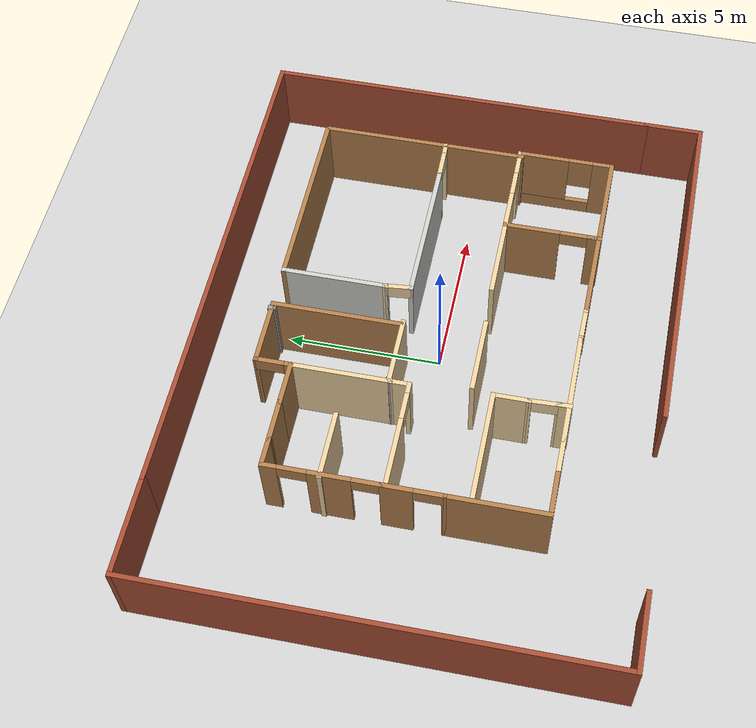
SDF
<sdf version="1.7">
 <world name="default">
  <light name="sun" type="directional">
   <pose>0 0 10 0 -0 0</pose>
   <diffuse>0.8 0.8 0.8 1</diffuse>
   <specular>0.2 0.2 0.2 1</specular>
   <attenuation>
    <range>1000</range>
    <constant>0.9</constant>
    <linear>0.01</linear>
    <quadratic>0.001</quadratic>
   </attenuation>
   <direction>-0.5 0.1 -0.9</direction>
   <spot><inner_angle>0</inner_angle><outer_angle>0</outer_angle><falloff>0</falloff></spot>
  </light>
  <model name="ground_plane">
   <static>1</static>
   <link name="link">
    <collision name="collision">
     <geometry><plane><normal>0 0 1</normal><size>100 100</size></plane></geometry>
     <surface><friction><ode><mu>100</mu><mu2>50</mu2></ode></friction></surface>
    </collision>
    <visual name="visual">
     <cast_shadows>0</cast_shadows>
     <geometry><plane><normal>0 0 1</normal><size>100 100</size></plane></geometry>
     <material>
      <script><uri>file://media/materials/scripts/gazebo.material</uri><name>Gazebo/Grey</name></script>
     </material>
    </visual>
   </link>
  </model>
  <gravity>0 0 -9.8</gravity>
  <magnetic_field>6e-06 2.3e-05 -4.2e-05</magnetic_field>
  <atmosphere type="adiabatic"/>
  <physics type="ode">
   <max_step_size>0.001</max_step_size>
   <real_time_factor>1</real_time_factor>
   <real_time_update_rate>1000</real_time_update_rate>
  </physics>
  <scene><ambient>0.4 0.4 0.4 1</ambient><background>0.7 0.7 0.7 1</background><shadows>1</shadows></scene>
  <audio><device>default</device></audio>
  <spherical_coordinates>
   <surface_model>EARTH_WGS84</surface_model>
   <latitude_deg>0</latitude_deg>
   <longitude_deg>0</longitude_deg>
   <elevation>0</elevation>
   <heading_deg>0</heading_deg>
  </spherical_coordinates>
  <model name="amr_terrain">
   <pose>-0.394362 0.029326 0 0 -0 0</pose>
   <link name="Wall_1">
    <collision name="Wall_1_Collision">
     <geometry><box><size>0.25 0.15 2.5</size></box></geometry>
     <pose>0 0 1.25 0 -0 0</pose>
    </collision>
    <visual name="Wall_1_Visual">
     <pose>0 0 1.25 0 -0 0</pose>
     <geometry><box><size>0.25 0.15 2.5</size></box></geometry>
     <material>
      <script><uri>file://media/materials/scripts/gazebo.material</uri><name>Gazebo/Grey</name></script>
      <ambient>0 0 0 1</ambient>
     </material>
     <meta><layer>0</layer></meta>
    </visual>
    <pose>-0.102526 5.24389 0 0 -0 -1.5708</pose>
   </link>
   <link name="Wall_14">
    <collision name="Wall_14_Collision">
     <geometry><box><size>3.4468 0.15 2.5</size></box></geometry>
     <pose>0 0 1.25 0 -0 0</pose>
    </collision>
    <visual name="Wall_14_Visual">
     <pose>0 0 1.25 0 -0 0</pose>
     <geometry><box><size>3.4468 0.15 2.5</size></box></geometry>
     <material>
      <script><uri>file://media/materials/scripts/gazebo.material</uri><name>Gazebo/CeilingTiled</name></script>
      <ambient>0.921569 0.807843 0.615686 1</ambient>
     </material>
     <meta><layer>0</layer></meta>
    </visual>
    <pose>1.3991 3.59229 0 0 -0 -1.5708</pose>
   </link>
   <link name="Wall_16">
    <collision name="Wall_16_Collision">
     <geometry><box><size>5 0.15 2.5</size></box></geometry>
     <pose>0 0 1.25 0 -0 0</pose>
    </collision>
    <visual name="Wall_16_Visual">
     <pose>0 0 1.25 0 -0 0</pose>
     <geometry><box><size>5 0.15 2.5</size></box></geometry>
     <material>
      <script><uri>file://media/materials/scripts/gazebo.material</uri><name>Gazebo/CeilingTiled</name></script>
      <ambient>0.921569 0.807843 0.615686 1</ambient>
     </material>
     <meta><layer>0</layer></meta>
    </visual>
    <pose>3.9039 1.11766 0 0 -0 0</pose>
   </link>
   <link name="Wall_18">
    <collision name="Wall_18_Collision">
     <geometry><box><size>3.25 0.15 2.5</size></box></geometry>
     <pose>0 0 1.25 0 -0 0</pose>
    </collision>
    <visual name="Wall_18_Visual">
     <pose>0 0 1.25 0 -0 0</pose>
     <geometry><box><size>3.25 0.15 2.5</size></box></geometry>
     <material>
      <script><uri>file://media/materials/scripts/gazebo.material</uri><name>Gazebo/Wood</name></script>
      <ambient>1 1 1 1</ambient>
     </material>
     <meta><layer>0</layer></meta>
    </visual>
    <pose>-5.54355 -2.85296 0 0 -0 -1.5708</pose>
   </link>
   <link name="Wall_19">
    <collision name="Wall_19_Collision">
     <geometry><box><size>1.5 0.15 2.5</size></box></geometry>
     <pose>0 0 1.25 0 -0 0</pose>
    </collision>
    <visual name="Wall_19_Visual">
     <pose>0 0 1.25 0 -0 0</pose>
     <geometry><box><size>1.5 0.15 2.5</size></box></geometry>
     <material>
      <script><uri>file://media/materials/scripts/gazebo.material</uri><name>Gazebo/Wood</name></script>
      <ambient>1 1 1 1</ambient>
     </material>
     <meta><layer>0</layer></meta>
    </visual>
    <pose>-4.86855 -4.40296 0 0 -0 0</pose>
   </link>
   <link name="Wall_21">
    <collision name="Wall_21_Collision">
     <geometry><box><size>3.75 0.15 2.5</size></box></geometry>
     <pose>0 0 1.25 0 -0 0</pose>
    </collision>
    <visual name="Wall_21_Visual">
     <pose>0 0 1.25 0 -0 0</pose>
     <geometry><box><size>3.75 0.15 2.5</size></box></geometry>
     <material>
      <script><uri>file://media/materials/scripts/gazebo.material</uri><name>Gazebo/Grey</name></script>
      <ambient>0.921569 0.807843 0.615686 1</ambient>
     </material>
     <meta><layer>0</layer></meta>
    </visual>
    <pose>-1.24313 -4.41519 0 0 -0 0</pose>
   </link>
   <link name="Wall_23">
    <collision name="Wall_23_Collision">
     <geometry><box><size>0.5 0.15 2.5</size></box></geometry>
     <pose>0 0 1.25 0 -0 0</pose>
    </collision>
    <visual name="Wall_23_Visual">
     <pose>0 0 1.25 0 -0 0</pose>
     <geometry><box><size>0.5 0.15 2.5</size></box></geometry>
     <material>
      <script><uri>file://media/materials/scripts/gazebo.material</uri><name>Gazebo/Grey</name></script>
      <ambient>0.921569 0.807843 0.615686 1</ambient>
     </material>
     <meta><layer>0</layer></meta>
    </visual>
    <pose>-1.87273 -4.26678 0 0 -0 1.5708</pose>
   </link>
   <link name="Wall_25">
    <collision name="Wall_25_Collision">
     <geometry><box><size>3.75 0.15 2.5</size></box></geometry>
     <pose>0 0 1.25 0 -0 0</pose>
    </collision>
    <visual name="Wall_25_Visual">
     <pose>0 0 1.25 0 -0 0</pose>
     <geometry><box><size>3.75 0.15 2.5</size></box></geometry>
     <material>
      <script><uri>file://media/materials/scripts/gazebo.material</uri><name>Gazebo/Grey</name></script>
      <ambient>0.921569 0.807843 0.615686 1</ambient>
     </material>
     <meta><layer>0</layer></meta>
    </visual>
    <pose>-3.71695 -2.10097 0 0 -0 0</pose>
   </link>
   <link name="Wall_30">
    <collision name="Wall_30_Collision">
     <geometry><box><size>1.25 0.15 2.5</size></box></geometry>
     <pose>0 0 1.25 0 -0 0</pose>
    </collision>
    <visual name="Wall_30_Visual">
     <pose>0 0 1.25 0 -0 0</pose>
     <geometry><box><size>1.25 0.15 2.5</size></box></geometry>
     <material>
      <script><uri>file://media/materials/scripts/gazebo.material</uri><name>Gazebo/Grey</name></script>
      <ambient>0.921569 0.807843 0.615686 1</ambient>
     </material>
     <meta><layer>0</layer></meta>
    </visual>
    <pose>-1.91695 -2.65097 0 0 -0 -1.5708</pose>
   </link>
   <link name="Wall_32">
    <collision name="Wall_32_Collision">
     <geometry><box><size>6.02684 0.15 2.5</size></box></geometry>
     <pose>0 0 1.25 0 -0 0</pose>
    </collision>
    <visual name="Wall_32_Visual">
     <pose>0 0 1.25 0 -0 0</pose>
     <geometry><box><size>6.02684 0.15 2.5</size></box></geometry>
     <material>
      <script><uri>file://media/materials/scripts/gazebo.material</uri><name>Gazebo/Wood</name></script>
      <ambient>1 1 1 1</ambient>
     </material>
     <meta><layer>0</layer></meta>
    </visual>
    <pose>4.7098 -4.46838 0 0 -0 -0.009053</pose>
   </link>
   <link name="Wall_36">
    <collision name="Wall_36_Collision">
     <geometry><box><size>6.25 0.15 2.5</size></box></geometry>
     <pose>0 0 1.25 0 -0 0</pose>
    </collision>
    <visual name="Wall_36_Visual">
     <pose>0 0 1.25 0 -0 0</pose>
     <geometry><box><size>6.25 0.15 2.5</size></box></geometry>
     <material>
      <script><uri>file://media/materials/scripts/gazebo.material</uri><name>Gazebo/Wood</name></script>
      <ambient>1 1 1 1</ambient>
     </material>
     <meta><layer>0</layer></meta>
    </visual>
    <pose>4.4491 5.24069 0 0 -0 0</pose>
   </link>
   <link name="Wall_37">
    <collision name="Wall_37_Collision">
     <geometry><box><size>4.25 0.15 2.5</size></box></geometry>
     <pose>0 0 1.25 0 -0 0</pose>
    </collision>
    <visual name="Wall_37_Visual">
     <pose>0 0 1.25 0 -0 0</pose>
     <geometry><box><size>4.25 0.15 2.5</size></box></geometry>
     <material>
      <script><uri>file://media/materials/scripts/gazebo.material</uri><name>Gazebo/Wood</name></script>
      <ambient>0.921569 0.807843 0.615686 1</ambient>
     </material>
     <meta><layer>0</layer></meta>
    </visual>
    <pose>7.4991 3.19069 0 0 -0 -1.5708</pose>
   </link>
   <link name="Wall_38">
    <pose>6.914 1.12917 0 0 -0 -3.12191</pose>
    <visual name="Wall_38_Visual_0">
     <pose>-0.457843 0 1.25 0 -0 0</pose>
     <geometry><box><size>0.404739 0.15 2.5</size></box></geometry>
     <material>
      <script><uri>file://media/materials/scripts/gazebo.material</uri><name>Gazebo/Grey</name></script>
      <ambient>0.921569 0.807843 0.615686 1</ambient>
     </material>
     <meta><layer>0</layer></meta>
    </visual>
    <collision name="Wall_38_Collision_0">
     <geometry><box><size>0.404739 0.15 2.5</size></box></geometry>
     <pose>-0.457843 0 1.25 0 -0 0</pose>
    </collision>
    <visual name="Wall_38_Visual_1">
     <pose>0.65237 0 1.25 0 -0 0</pose>
     <geometry><box><size>0.015687 0.15 2.5</size></box></geometry>
     <material>
      <script><uri>file://media/materials/scripts/gazebo.material</uri><name>Gazebo/Grey</name></script>
      <ambient>0.921569 0.807843 0.615686 1</ambient>
     </material>
     <meta><layer>0</layer></meta>
    </visual>
    <collision name="Wall_38_Collision_1">
     <geometry><box><size>0.015687 0.15 2.5</size></box></geometry>
     <pose>0.65237 0 1.25 0 -0 0</pose>
    </collision>
    <visual name="Wall_38_Visual_2">
     <pose>0.194526 0 2.25 0 -0 0</pose>
     <geometry><box><size>0.9 0.15 0.5</size></box></geometry>
     <material>
      <script><uri>file://media/materials/scripts/gazebo.material</uri><name>Gazebo/Grey</name></script>
      <ambient>0.921569 0.807843 0.615686 1</ambient>
     </material>
     <meta><layer>0</layer></meta>
    </visual>
    <collision name="Wall_38_Collision_2">
     <geometry><box><size>0.9 0.15 0.5</size></box></geometry>
     <pose>0.194526 0 2.25 0 -0 0</pose>
    </collision>
   </link>
   <link name="Wall_40">
    <pose>7.6481 -2.94498 0 0 -0 1.5708</pose>
    <visual name="Wall_40_Visual_0">
     <pose>-1.2688 0 1.25 0 -0 0</pose>
     <geometry><box><size>0.712408 0.15 2.5</size></box></geometry>
     <material>
      <script><uri>file://media/materials/scripts/gazebo.material</uri><name>Gazebo/Wood</name></script>
      <ambient>1 1 1 1</ambient>
     </material>
     <meta><layer>0</layer></meta>
    </visual>
    <collision name="Wall_40_Collision_0">
     <geometry><box><size>0.712408 0.15 2.5</size></box></geometry>
     <pose>-1.2688 0 1.25 0 -0 0</pose>
    </collision>
    <visual name="Wall_40_Visual_1">
     <pose>0.356204 0 0.25 0 -0 0</pose>
     <geometry><box><size>2.53759 0.15 0.5</size></box></geometry>
     <material>
      <script><uri>file://media/materials/scripts/gazebo.material</uri><name>Gazebo/Wood</name></script>
      <ambient>1 1 1 1</ambient>
     </material>
     <meta><layer>0</layer></meta>
    </visual>
    <collision name="Wall_40_Collision_1">
     <geometry><box><size>2.53759 0.15 0.5</size></box></geometry>
     <pose>0.356204 0 0.25 0 -0 0</pose>
    </collision>
    <visual name="Wall_40_Visual_2">
     <pose>0.756204 0 1.5 0 -0 0</pose>
     <geometry><box><size>1.73759 0.15 2</size></box></geometry>
     <material>
      <script><uri>file://media/materials/scripts/gazebo.material</uri><name>Gazebo/Wood</name></script>
      <ambient>1 1 1 1</ambient>
     </material>
     <meta><layer>0</layer></meta>
    </visual>
    <collision name="Wall_40_Collision_2">
     <geometry><box><size>1.73759 0.15 2</size></box></geometry>
     <pose>0.756204 0 1.5 0 -0 0</pose>
    </collision>
    <visual name="Wall_40_Visual_3">
     <pose>-0.512592 0 1.9 0 -0 0</pose>
     <geometry><box><size>0.8 0.15 1.2</size></box></geometry>
     <material>
      <script><uri>file://media/materials/scripts/gazebo.material</uri><name>Gazebo/Wood</name></script>
      <ambient>1 1 1 1</ambient>
     </material>
     <meta><layer>0</layer></meta>
    </visual>
    <collision name="Wall_40_Collision_3">
     <geometry><box><size>0.8 0.15 1.2</size></box></geometry>
     <pose>-0.512592 0 1.9 0 -0 0</pose>
    </collision>
   </link>
   <link name="Wall_41">
    <pose>6.0981 -1.39498 0 0 -0 3.14159</pose>
    <visual name="Wall_41_Visual_0">
     <pose>-1.14852 0 1.25 0 -0 0</pose>
     <geometry><box><size>0.952966 0.15 2.5</size></box></geometry>
     <material>
      <script><uri>file://media/materials/scripts/gazebo.material</uri><name>Gazebo/Grey</name></script>
      <ambient>0.921569 0.807843 0.615686 1</ambient>
     </material>
     <meta><layer>0</layer></meta>
    </visual>
    <collision name="Wall_41_Collision_0">
     <geometry><box><size>0.952966 0.15 2.5</size></box></geometry>
     <pose>-1.14852 0 1.25 0 -0 0</pose>
    </collision>
    <visual name="Wall_41_Visual_1">
     <pose>0.926483 0 1.25 0 -0 0</pose>
     <geometry><box><size>1.39703 0.15 2.5</size></box></geometry>
     <material>
      <script><uri>file://media/materials/scripts/gazebo.material</uri><name>Gazebo/Grey</name></script>
      <ambient>0.921569 0.807843 0.615686 1</ambient>
     </material>
     <meta><layer>0</layer></meta>
    </visual>
    <collision name="Wall_41_Collision_1">
     <geometry><box><size>1.39703 0.15 2.5</size></box></geometry>
     <pose>0.926483 0 1.25 0 -0 0</pose>
    </collision>
    <visual name="Wall_41_Visual_2">
     <pose>-0.222034 0 2.25 0 -0 0</pose>
     <geometry><box><size>0.9 0.15 0.5</size></box></geometry>
     <material>
      <script><uri>file://media/materials/scripts/gazebo.material</uri><name>Gazebo/Grey</name></script>
      <ambient>0.921569 0.807843 0.615686 1</ambient>
     </material>
     <meta><layer>0</layer></meta>
    </visual>
    <collision name="Wall_41_Collision_2">
     <geometry><box><size>0.9 0.15 0.5</size></box></geometry>
     <pose>-0.222034 0 2.25 0 -0 0</pose>
    </collision>
   </link>
   <link name="Wall_43">
    <collision name="Wall_43_Collision">
     <geometry><box><size>0.15 0.15 2.5</size></box></geometry>
     <pose>0 0 1.25 0 -0 0</pose>
    </collision>
    <visual name="Wall_43_Visual">
     <pose>0 0 1.25 0 -0 0</pose>
     <geometry><box><size>0.15 0.15 2.5</size></box></geometry>
     <material>
      <script><uri>file://media/materials/scripts/gazebo.material</uri><name>Gazebo/Grey</name></script>
      <ambient>1 1 1 1</ambient>
     </material>
     <meta><layer>0</layer></meta>
    </visual>
    <pose>4.5481 -4.24499 0 0 -0 0</pose>
   </link>
   <link name="Wall_45">
    <pose>4.5481 -2.94498 0 0 -0 -1.5708</pose>
    <visual name="Wall_45_Visual_0">
     <pose>-0.688103 0 1.25 0 -0 0</pose>
     <geometry><box><size>1.87379 0.15 2.5</size></box></geometry>
     <material>
      <script><uri>file://media/materials/scripts/gazebo.material</uri><name>Gazebo/Wood</name></script>
      <ambient>0.921569 0.807843 0.615686 1</ambient>
     </material>
     <meta><layer>0</layer></meta>
    </visual>
    <collision name="Wall_45_Collision_0">
     <geometry><box><size>1.87379 0.15 2.5</size></box></geometry>
     <pose>-0.688103 0 1.25 0 -0 0</pose>
    </collision>
    <visual name="Wall_45_Visual_1">
     <pose>1.3869 0 1.25 0 -0 0</pose>
     <geometry><box><size>0.476206 0.15 2.5</size></box></geometry>
     <material>
      <script><uri>file://media/materials/scripts/gazebo.material</uri><name>Gazebo/Wood</name></script>
      <ambient>0.921569 0.807843 0.615686 1</ambient>
     </material>
     <meta><layer>0</layer></meta>
    </visual>
    <collision name="Wall_45_Collision_1">
     <geometry><box><size>0.476206 0.15 2.5</size></box></geometry>
     <pose>1.3869 0 1.25 0 -0 0</pose>
    </collision>
    <visual name="Wall_45_Visual_2">
     <pose>0.698794 0 2.25 0 -0 0</pose>
     <geometry><box><size>0.9 0.15 0.5</size></box></geometry>
     <material>
      <script><uri>file://media/materials/scripts/gazebo.material</uri><name>Gazebo/Wood</name></script>
      <ambient>0.921569 0.807843 0.615686 1</ambient>
     </material>
     <meta><layer>0</layer></meta>
    </visual>
    <collision name="Wall_45_Collision_2">
     <geometry><box><size>0.9 0.15 0.5</size></box></geometry>
     <pose>0.698794 0 2.25 0 -0 0</pose>
    </collision>
   </link>
   <link name="Wall_47">
    <collision name="Wall_47_Collision">
     <geometry><box><size>2.75 0.15 2.5</size></box></geometry>
     <pose>0 0 1.25 0 -0 0</pose>
    </collision>
    <visual name="Wall_47_Visual">
     <pose>0 0 1.25 0 -0 0</pose>
     <geometry><box><size>2.75 0.15 2.5</size></box></geometry>
     <material>
      <script><uri>file://media/materials/scripts/gazebo.material</uri><name>Gazebo/Grey</name></script>
      <ambient>0.921569 0.807843 0.615686 1</ambient>
     </material>
     <meta><layer>0</layer></meta>
    </visual>
    <pose>3.2481 -1.39498 0 0 -0 3.14159</pose>
   </link>
   <link name="Wall_49">
    <collision name="Wall_49_Collision">
     <geometry><box><size>2.5 0.15 2.5</size></box></geometry>
     <pose>0 0 1.25 0 -0 0</pose>
    </collision>
    <visual name="Wall_49_Visual">
     <pose>0 0 1.25 0 -0 0</pose>
     <geometry><box><size>2.5 0.15 2.5</size></box></geometry>
     <material>
      <script><uri>file://media/materials/scripts/gazebo.material</uri><name>Gazebo/Grey</name></script>
      <ambient>0.921569 0.807843 0.615686 1</ambient>
     </material>
     <meta><layer>0</layer></meta>
    </visual>
    <pose>-0.573907 -1.43596 0 0 -0 3.14159</pose>
   </link>
   <link name="Wall_51">
    <pose>-5.54355 -0.377962 0 0 -0 1.5708</pose>
    <visual name="Wall_51_Visual_0">
     <pose>-0.948098 0 1.25 0 -0 0</pose>
     <geometry><box><size>0.103804 0.15 2.5</size></box></geometry>
     <material>
      <script><uri>file://media/materials/scripts/gazebo.material</uri><name>Gazebo/Wood</name></script>
      <ambient>1 1 1 1</ambient>
     </material>
     <meta><layer>0</layer></meta>
    </visual>
    <collision name="Wall_51_Collision_0">
     <geometry><box><size>0.103804 0.15 2.5</size></box></geometry>
     <pose>-0.948098 0 1.25 0 -0 0</pose>
    </collision>
    <visual name="Wall_51_Visual_1">
     <pose>0.501902 0 1.25 0 -0 0</pose>
     <geometry><box><size>0.996196 0.15 2.5</size></box></geometry>
     <material>
      <script><uri>file://media/materials/scripts/gazebo.material</uri><name>Gazebo/Wood</name></script>
      <ambient>1 1 1 1</ambient>
     </material>
     <meta><layer>0</layer></meta>
    </visual>
    <collision name="Wall_51_Collision_1">
     <geometry><box><size>0.996196 0.15 2.5</size></box></geometry>
     <pose>0.501902 0 1.25 0 -0 0</pose>
    </collision>
    <visual name="Wall_51_Visual_2">
     <pose>-0.446196 0 2.25 0 -0 0</pose>
     <geometry><box><size>0.9 0.15 0.5</size></box></geometry>
     <material>
      <script><uri>file://media/materials/scripts/gazebo.material</uri><name>Gazebo/Wood</name></script>
      <ambient>1 1 1 1</ambient>
     </material>
     <meta><layer>0</layer></meta>
    </visual>
    <collision name="Wall_51_Collision_2">
     <geometry><box><size>0.9 0.15 0.5</size></box></geometry>
     <pose>-0.446196 0 2.25 0 -0 0</pose>
    </collision>
   </link>
   <link name="Wall_52">
    <pose>-5.54355 2.34704 0 0 -0 1.5708</pose>
    <visual name="Wall_52_Visual_0">
     <pose>-1.83039 0 1.25 0 -0 0</pose>
     <geometry><box><size>0.089217 0.15 2.5</size></box></geometry>
     <material>
      <script><uri>file://media/materials/scripts/gazebo.material</uri><name>Gazebo/Wood</name></script>
      <ambient>1 1 1 1</ambient>
     </material>
     <meta><layer>0</layer></meta>
    </visual>
    <collision name="Wall_52_Collision_0">
     <geometry><box><size>0.089217 0.15 2.5</size></box></geometry>
     <pose>-1.83039 0 1.25 0 -0 0</pose>
    </collision>
    <visual name="Wall_52_Visual_1">
     <pose>-0.218574 0 1.25 0 -0 0</pose>
     <geometry><box><size>1.33442 0.15 2.5</size></box></geometry>
     <material>
      <script><uri>file://media/materials/scripts/gazebo.material</uri><name>Gazebo/Wood</name></script>
      <ambient>1 1 1 1</ambient>
     </material>
     <meta><layer>0</layer></meta>
    </visual>
    <collision name="Wall_52_Collision_1">
     <geometry><box><size>1.33442 0.15 2.5</size></box></geometry>
     <pose>-0.218574 0 1.25 0 -0 0</pose>
    </collision>
    <visual name="Wall_52_Visual_2">
     <pose>1.61182 0 1.25 0 -0 0</pose>
     <geometry><box><size>0.526366 0.15 2.5</size></box></geometry>
     <material>
      <script><uri>file://media/materials/scripts/gazebo.material</uri><name>Gazebo/Wood</name></script>
      <ambient>1 1 1 1</ambient>
     </material>
     <meta><layer>0</layer></meta>
    </visual>
    <collision name="Wall_52_Collision_2">
     <geometry><box><size>0.526366 0.15 2.5</size></box></geometry>
     <pose>1.61182 0 1.25 0 -0 0</pose>
    </collision>
    <visual name="Wall_52_Visual_3">
     <pose>-1.33578 0 2.25 0 -0 0</pose>
     <geometry><box><size>0.9 0.15 0.5</size></box></geometry>
     <material>
      <script><uri>file://media/materials/scripts/gazebo.material</uri><name>Gazebo/Wood</name></script>
      <ambient>1 1 1 1</ambient>
     </material>
     <meta><layer>0</layer></meta>
    </visual>
    <collision name="Wall_52_Collision_3">
     <geometry><box><size>0.9 0.15 0.5</size></box></geometry>
     <pose>-1.33578 0 2.25 0 -0 0</pose>
    </collision>
    <visual name="Wall_52_Visual_4">
     <pose>0.898634 0 2.25 0 -0 0</pose>
     <geometry><box><size>0.9 0.15 0.5</size></box></geometry>
     <material>
      <script><uri>file://media/materials/scripts/gazebo.material</uri><name>Gazebo/Wood</name></script>
      <ambient>1 1 1 1</ambient>
     </material>
     <meta><layer>0</layer></meta>
    </visual>
    <collision name="Wall_52_Collision_4">
     <geometry><box><size>0.9 0.15 0.5</size></box></geometry>
     <pose>0.898634 0 2.25 0 -0 0</pose>
    </collision>
   </link>
   <link name="Wall_53">
    <collision name="Wall_53_Collision">
     <geometry><box><size>1 0.15 2.5</size></box></geometry>
     <pose>0 0 1.25 0 -0 0</pose>
    </collision>
    <visual name="Wall_53_Visual">
     <pose>0 0 1.25 0 -0 0</pose>
     <geometry><box><size>1 0.15 2.5</size></box></geometry>
     <material>
      <script><uri>file://media/materials/scripts/gazebo.material</uri><name>Gazebo/Wood</name></script>
      <ambient>1 1 1 1</ambient>
     </material>
     <meta><layer>0</layer></meta>
    </visual>
    <pose>-5.11855 4.14704 0 0 -0 0</pose>
   </link>
   <link name="Wall_55">
    <collision name="Wall_55_Collision">
     <geometry><box><size>1.5 0.15 2.5</size></box></geometry>
     <pose>0 0 1.25 0 -0 0</pose>
    </collision>
    <visual name="Wall_55_Visual">
     <pose>0 0 1.25 0 -0 0</pose>
     <geometry><box><size>1.5 0.15 2.5</size></box></geometry>
     <material>
      <script><uri>file://media/materials/scripts/gazebo.material</uri><name>Gazebo/Wood</name></script>
      <ambient>1 1 1 1</ambient>
     </material>
     <meta><layer>0</layer></meta>
    </visual>
    <pose>-2.71394 4.15008 0 0 -0 0</pose>
   </link>
   <link name="Wall_56">
    <collision name="Wall_56_Collision">
     <geometry><box><size>3.25 0.15 2.5</size></box></geometry>
     <pose>0 0 1.25 0 -0 0</pose>
    </collision>
    <visual name="Wall_56_Visual">
     <pose>0 0 1.25 0 -0 0</pose>
     <geometry><box><size>3.25 0.15 2.5</size></box></geometry>
     <material>
      <script><uri>file://media/materials/scripts/gazebo.material</uri><name>Gazebo/Grey</name></script>
      <ambient>0.921569 0.807843 0.615686 1</ambient>
     </material>
     <meta><layer>0</layer></meta>
    </visual>
    <pose>-2.03894 2.60008 0 0 -0 -1.5708</pose>
   </link>
   <link name="Wall_57">
    <collision name="Wall_57_Collision">
     <geometry><box><size>0.75 0.15 2.5</size></box></geometry>
     <pose>0 0 1.25 0 -0 0</pose>
    </collision>
    <visual name="Wall_57_Visual">
     <pose>0 0 1.25 0 -0 0</pose>
     <geometry><box><size>0.75 0.15 2.5</size></box></geometry>
     <material>
      <script><uri>file://media/materials/scripts/gazebo.material</uri><name>Gazebo/Grey</name></script>
      <ambient>0.921569 0.807843 0.615686 1</ambient>
     </material>
     <meta><layer>0</layer></meta>
    </visual>
    <pose>-2.03894 0.750079 0 0 -0 -1.5708</pose>
   </link>
   <link name="Wall_58">
    <pose>-3.71394 0.450079 0 0 -0 3.14159</pose>
    <visual name="Wall_58_Visual_0">
     <pose>-1.5551 0 1.25 0 -0 0</pose>
     <geometry><box><size>0.389795 0.15 2.5</size></box></geometry>
     <material>
      <script><uri>file://media/materials/scripts/gazebo.material</uri><name>Gazebo/Grey</name></script>
      <ambient>0.921569 0.807843 0.615686 1</ambient>
     </material>
     <meta><layer>0</layer></meta>
    </visual>
    <collision name="Wall_58_Collision_0">
     <geometry><box><size>0.389795 0.15 2.5</size></box></geometry>
     <pose>-1.5551 0 1.25 0 -0 0</pose>
    </collision>
    <visual name="Wall_58_Visual_1">
     <pose>0.644898 0 1.25 0 -0 0</pose>
     <geometry><box><size>2.21021 0.15 2.5</size></box></geometry>
     <material>
      <script><uri>file://media/materials/scripts/gazebo.material</uri><name>Gazebo/Grey</name></script>
      <ambient>0.921569 0.807843 0.615686 1</ambient>
     </material>
     <meta><layer>0</layer></meta>
    </visual>
    <collision name="Wall_58_Collision_1">
     <geometry><box><size>2.21021 0.15 2.5</size></box></geometry>
     <pose>0.644898 0 1.25 0 -0 0</pose>
    </collision>
    <visual name="Wall_58_Visual_2">
     <pose>-0.910205 0 2.25 0 -0 0</pose>
     <geometry><box><size>0.9 0.15 0.5</size></box></geometry>
     <material>
      <script><uri>file://media/materials/scripts/gazebo.material</uri><name>Gazebo/Grey</name></script>
      <ambient>0.921569 0.807843 0.615686 1</ambient>
     </material>
     <meta><layer>0</layer></meta>
    </visual>
    <collision name="Wall_58_Collision_2">
     <geometry><box><size>0.9 0.15 0.5</size></box></geometry>
     <pose>-0.910205 0 2.25 0 -0 0</pose>
    </collision>
   </link>
   <link name="Wall_60">
    <pose>-2.03894 4.70008 0 0 -0 1.5708</pose>
    <visual name="Wall_60_Visual_0">
     <pose>-0.479997 0 1.25 0 -0 0</pose>
     <geometry><box><size>0.290005 0.15 2.5</size></box></geometry>
     <material>
      <script><uri>file://media/materials/scripts/gazebo.material</uri><name>Gazebo/Wood</name></script>
      <ambient>1 1 1 1</ambient>
     </material>
     <meta><layer>0</layer></meta>
    </visual>
    <collision name="Wall_60_Collision_0">
     <geometry><box><size>0.290005 0.15 2.5</size></box></geometry>
     <pose>-0.479997 0 1.25 0 -0 0</pose>
    </collision>
    <visual name="Wall_60_Visual_1">
     <pose>0.595003 0 1.25 0 -0 0</pose>
     <geometry><box><size>0.059995 0.15 2.5</size></box></geometry>
     <material>
      <script><uri>file://media/materials/scripts/gazebo.material</uri><name>Gazebo/Wood</name></script>
      <ambient>1 1 1 1</ambient>
     </material>
     <meta><layer>0</layer></meta>
    </visual>
    <collision name="Wall_60_Collision_1">
     <geometry><box><size>0.059995 0.15 2.5</size></box></geometry>
     <pose>0.595003 0 1.25 0 -0 0</pose>
    </collision>
    <visual name="Wall_60_Visual_2">
     <pose>0.115005 0 2.25 0 -0 0</pose>
     <geometry><box><size>0.9 0.15 0.5</size></box></geometry>
     <material>
      <script><uri>file://media/materials/scripts/gazebo.material</uri><name>Gazebo/Wood</name></script>
      <ambient>1 1 1 1</ambient>
     </material>
     <meta><layer>0</layer></meta>
    </visual>
    <collision name="Wall_60_Collision_2">
     <geometry><box><size>0.9 0.15 0.5</size></box></geometry>
     <pose>0.115005 0 2.25 0 -0 0</pose>
    </collision>
   </link>
   <link name="Wall_61">
    <collision name="Wall_61_Collision">
     <geometry><box><size>2.25 0.15 2.5</size></box></geometry>
     <pose>0 0 1.25 0 -0 0</pose>
    </collision>
    <visual name="Wall_61_Visual">
     <pose>0 0 1.25 0 -0 0</pose>
     <geometry><box><size>2.25 0.15 2.5</size></box></geometry>
     <material>
      <script><uri>file://media/materials/scripts/gazebo.material</uri><name>Gazebo/Wood</name></script>
      <ambient>1 1 1 1</ambient>
     </material>
     <meta><layer>0</layer></meta>
    </visual>
    <pose>-0.988937 5.25008 0 0 -0 0</pose>
   </link>
   <link name="Wall_62">
    <collision name="Wall_62_Collision">
     <geometry><box><size>4.25 0.15 2.5</size></box></geometry>
     <pose>0 0 1.25 0 -0 0</pose>
    </collision>
    <visual name="Wall_62_Visual">
     <pose>0 0 1.25 0 -0 0</pose>
     <geometry><box><size>4.25 0.15 2.5</size></box></geometry>
     <material>
      <script><uri>file://media/materials/scripts/gazebo.material</uri><name>Gazebo/Wood</name></script>
      <ambient>0.921569 0.807843 0.615686 1</ambient>
     </material>
     <meta><layer>0</layer></meta>
    </visual>
    <pose>0.061063 3.20008 0 0 -0 -1.5708</pose>
   </link>
   <link name="Wall_65">
    <collision name="Wall_65_Collision">
     <geometry><box><size>2.75 0.15 2.5</size></box></geometry>
     <pose>0 0 1.25 0 -0 0</pose>
    </collision>
    <visual name="Wall_65_Visual">
     <pose>0 0 1.25 0 -0 0</pose>
     <geometry><box><size>2.75 0.15 2.5</size></box></geometry>
     <material>
      <script><uri>file://media/materials/scripts/gazebo.material</uri><name>Gazebo/Wood</name></script>
      <ambient>1 1 1 1</ambient>
     </material>
     <meta><layer>0</layer></meta>
    </visual>
    <pose>7.4991 -0.159313 0 0 -0 -1.5708</pose>
   </link>
   <link name="Wall_67">
    <collision name="Wall_67_Collision">
     <geometry><box><size>0.254758 0.15 2.5</size></box></geometry>
     <pose>0 0 1.25 0 -0 0</pose>
    </collision>
    <visual name="Wall_67_Visual">
     <pose>0 0 1.25 0 -0 0</pose>
     <geometry><box><size>0.254758 0.15 2.5</size></box></geometry>
     <material>
      <script><uri>file://media/materials/scripts/gazebo.material</uri><name>Gazebo/Grey</name></script>
      <ambient>1 1 1 1</ambient>
     </material>
     <meta><layer>0</layer></meta>
    </visual>
    <pose>-1.99073 1.07057 0 0 -0 0.401893</pose>
   </link>
   <link name="Wall_68">
    <collision name="Wall_68_Collision">
     <geometry><box><size>2.25 0.15 2.5</size></box></geometry>
     <pose>0 0 1.25 0 -0 0</pose>
    </collision>
    <visual name="Wall_68_Visual">
     <pose>0 0 1.25 0 -0 0</pose>
     <geometry><box><size>2.25 0.15 2.5</size></box></geometry>
     <material>
      <script><uri>file://media/materials/scripts/gazebo.material</uri><name>Gazebo/Grey</name></script>
      <ambient>0.921569 0.807843 0.615686 1</ambient>
     </material>
     <meta><layer>0</layer></meta>
    </visual>
    <pose>-0.892526 1.09106 0 0 -0 0</pose>
   </link>
   <link name="Wall_70">
    <collision name="Wall_70_Collision">
     <geometry><box><size>2.25 0.15 2.5</size></box></geometry>
     <pose>0 0 1.25 0 -0 0</pose>
    </collision>
    <visual name="Wall_70_Visual">
     <pose>0 0 1.25 0 -0 0</pose>
     <geometry><box><size>2.25 0.15 2.5</size></box></geometry>
     <material>
      <script><uri>file://media/materials/scripts/gazebo.material</uri><name>Gazebo/Grey</name></script>
      <ambient>0.921569 0.807843 0.615686 1</ambient>
     </material>
     <meta><layer>0</layer></meta>
    </visual>
    <pose>-4.54675 2.39447 0 0 -0 0</pose>
   </link>
   <link name="Wall_72">
    <pose>1.439 1.53077 0 0 -0 -1.47451</pose>
    <visual name="Wall_72_Visual_0">
     <pose>-0.402557 0 1.25 0 -0 0</pose>
     <geometry><box><size>0.174963 0.15 2.5</size></box></geometry>
     <material>
      <script><uri>file://media/materials/scripts/gazebo.material</uri><name>Gazebo/Grey</name></script>
      <ambient>0.921569 0.807843 0.615686 1</ambient>
     </material>
     <meta><layer>0</layer></meta>
    </visual>
    <collision name="Wall_72_Collision_0">
     <geometry><box><size>0.174963 0.15 2.5</size></box></geometry>
     <pose>-0.402557 0 1.25 0 -0 0</pose>
    </collision>
    <visual name="Wall_72_Visual_1">
     <pose>0.087481 0 2.25 0 -0 0</pose>
     <geometry><box><size>0.805113 0.15 0.5</size></box></geometry>
     <material>
      <script><uri>file://media/materials/scripts/gazebo.material</uri><name>Gazebo/Grey</name></script>
      <ambient>0.921569 0.807843 0.615686 1</ambient>
     </material>
     <meta><layer>0</layer></meta>
    </visual>
    <collision name="Wall_72_Collision_1">
     <geometry><box><size>0.805113 0.15 0.5</size></box></geometry>
     <pose>0.087481 0 2.25 0 -0 0</pose>
    </collision>
   </link>
   <link name="Wall_74">
    <pose>1.16418 -4.42849 0 0 -0 -0.021896</pose>
    <visual name="Wall_74_Visual_0">
     <pose>-0.572874 0 1.25 0 -0 0</pose>
     <geometry><box><size>0.21918 0.15 2.5</size></box></geometry>
     <material>
      <script><uri>file://media/materials/scripts/gazebo.material</uri><name>Gazebo/Grey</name></script>
      <ambient>0.921569 0.807843 0.615686 1</ambient>
     </material>
     <meta><layer>0</layer></meta>
    </visual>
    <collision name="Wall_74_Collision_0">
     <geometry><box><size>0.21918 0.15 2.5</size></box></geometry>
     <pose>-0.572874 0 1.25 0 -0 0</pose>
    </collision>
    <visual name="Wall_74_Visual_1">
     <pose>0.55959 0 1.25 0 -0 0</pose>
     <geometry><box><size>0.245748 0.15 2.5</size></box></geometry>
     <material>
      <script><uri>file://media/materials/scripts/gazebo.material</uri><name>Gazebo/Grey</name></script>
      <ambient>0.921569 0.807843 0.615686 1</ambient>
     </material>
     <meta><layer>0</layer></meta>
    </visual>
    <collision name="Wall_74_Collision_1">
     <geometry><box><size>0.245748 0.15 2.5</size></box></geometry>
     <pose>0.55959 0 1.25 0 -0 0</pose>
    </collision>
    <visual name="Wall_74_Visual_2">
     <pose>-0.013284 0 2.25 0 -0 0</pose>
     <geometry><box><size>0.9 0.15 0.5</size></box></geometry>
     <material>
      <script><uri>file://media/materials/scripts/gazebo.material</uri><name>Gazebo/Grey</name></script>
      <ambient>0.921569 0.807843 0.615686 1</ambient>
     </material>
     <meta><layer>0</layer></meta>
    </visual>
    <collision name="Wall_74_Collision_2">
     <geometry><box><size>0.9 0.15 0.5</size></box></geometry>
     <pose>-0.013284 0 2.25 0 -0 0</pose>
    </collision>
   </link>
   <link name="Wall_76">
    <pose>-1.89484 -3.82138 0 0 -0 -1.53517</pose>
    <visual name="Wall_76_Visual_0">
     <pose>-0.662197 0 1.25 0 -0 0</pose>
     <geometry><box><size>0.067211 0.15 2.5</size></box></geometry>
     <material>
      <script><uri>file://media/materials/scripts/gazebo.material</uri><name>Gazebo/Grey</name></script>
      <ambient>0.921569 0.807843 0.615686 1</ambient>
     </material>
     <meta><layer>0</layer></meta>
    </visual>
    <collision name="Wall_76_Collision_0">
     <geometry><box><size>0.067211 0.15 2.5</size></box></geometry>
     <pose>-0.662197 0 1.25 0 -0 0</pose>
    </collision>
    <visual name="Wall_76_Visual_1">
     <pose>0.483605 0 1.25 0 -0 0</pose>
     <geometry><box><size>0.424395 0.15 2.5</size></box></geometry>
     <material>
      <script><uri>file://media/materials/scripts/gazebo.material</uri><name>Gazebo/Grey</name></script>
      <ambient>0.921569 0.807843 0.615686 1</ambient>
     </material>
     <meta><layer>0</layer></meta>
    </visual>
    <collision name="Wall_76_Collision_1">
     <geometry><box><size>0.424395 0.15 2.5</size></box></geometry>
     <pose>0.483605 0 1.25 0 -0 0</pose>
    </collision>
    <visual name="Wall_76_Visual_2">
     <pose>-0.178592 0 2.25 0 -0 0</pose>
     <geometry><box><size>0.9 0.15 0.5</size></box></geometry>
     <material>
      <script><uri>file://media/materials/scripts/gazebo.material</uri><name>Gazebo/Grey</name></script>
      <ambient>0.921569 0.807843 0.615686 1</ambient>
     </material>
     <meta><layer>0</layer></meta>
    </visual>
    <collision name="Wall_76_Collision_2">
     <geometry><box><size>0.9 0.15 0.5</size></box></geometry>
     <pose>-0.178592 0 2.25 0 -0 0</pose>
    </collision>
   </link>
   <link name="Wall_78">
    <collision name="Wall_78_Collision">
     <geometry><box><size>1.30048 0.15 2.5</size></box></geometry>
     <pose>0 0 1.25 0 -0 0</pose>
    </collision>
    <visual name="Wall_78_Visual">
     <pose>0 0 1.25 0 -0 0</pose>
     <geometry><box><size>1.30048 0.15 2.5</size></box></geometry>
     <material>
      <script><uri>file://media/materials/scripts/gazebo.material</uri><name>Gazebo/Grey</name></script>
      <ambient>0.921569 0.807843 0.615686 1</ambient>
     </material>
     <meta><layer>0</layer></meta>
    </visual>
    <pose>-3.61834 -4.40907 0 0 -0 -0.010625</pose>
   </link>
   <link name="Wall_80">
    <collision name="Wall_80_Collision">
     <geometry><box><size>1.45462 0.15 2.5</size></box></geometry>
     <pose>0 0 1.25 0 -0 0</pose>
    </collision>
    <visual name="Wall_80_Visual">
     <pose>0 0 1.25 0 -0 0</pose>
     <geometry><box><size>1.45462 0.15 2.5</size></box></geometry>
     <material>
      <script><uri>file://media/materials/scripts/gazebo.material</uri><name>Gazebo/Wood</name></script>
      <ambient>1 1 1 1</ambient>
     </material>
     <meta><layer>0</layer></meta>
    </visual>
    <pose>-4.04124 4.14856 0 0 -0 0.002331</pose>
   </link>
   <link name="Wall_87">
    <collision name="Wall_87_Collision">
     <geometry><box><size>16.5 0.15 2.5</size></box></geometry>
     <pose>0 0 1.25 0 -0 0</pose>
    </collision>
    <visual name="Wall_87_Visual">
     <pose>0 0 1.25 0 -0 0</pose>
     <geometry><box><size>16.5 0.15 2.5</size></box></geometry>
     <material>
      <script><uri>file://media/materials/scripts/gazebo.material</uri><name>Gazebo/Bricks</name></script>
      <ambient>1 1 1 1</ambient>
     </material>
     <meta><layer>0</layer></meta>
    </visual>
    <pose>1.55 7.425 0 0 -0 0</pose>
   </link>
   <link name="Wall_88">
    <collision name="Wall_88_Collision">
     <geometry><box><size>13 0.15 2.5</size></box></geometry>
     <pose>0 0 1.25 0 -0 0</pose>
    </collision>
    <visual name="Wall_88_Visual">
     <pose>0 0 1.25 0 -0 0</pose>
     <geometry><box><size>13 0.15 2.5</size></box></geometry>
     <material>
      <script><uri>file://media/materials/scripts/gazebo.material</uri><name>Gazebo/Bricks</name></script>
      <ambient>1 1 1 1</ambient>
     </material>
     <meta><layer>0</layer></meta>
    </visual>
    <pose>9.725 1 0 0 -0 -1.5708</pose>
   </link>
   <link name="Wall_90">
    <collision name="Wall_90_Collision">
     <geometry><box><size>2 0.15 2.5</size></box></geometry>
     <pose>0 0 1.25 0 -0 0</pose>
    </collision>
    <visual name="Wall_90_Visual">
     <pose>0 0 1.25 0 -0 0</pose>
     <geometry><box><size>2 0.15 2.5</size></box></geometry>
     <material>
      <script><uri>file://media/materials/scripts/gazebo.material</uri><name>Gazebo/Bricks</name></script>
      <ambient>1 1 1 1</ambient>
     </material>
     <meta><layer>0</layer></meta>
    </visual>
    <pose>9.725 -6.35 0 0 -0 -1.5708</pose>
   </link>
   <link name="Wall_93">
    <collision name="Wall_93_Collision">
     <geometry><box><size>11.5 0.15 2.5</size></box></geometry>
     <pose>0 0 1.25 0 -0 0</pose>
    </collision>
    <visual name="Wall_93_Visual">
     <pose>0 0 1.25 0 -0 0</pose>
     <geometry><box><size>11.5 0.15 2.5</size></box></geometry>
     <material>
      <script><uri>file://media/materials/scripts/gazebo.material</uri><name>Gazebo/Bricks</name></script>
      <ambient>1 1 1 1</ambient>
     </material>
     <meta><layer>0</layer></meta>
    </visual>
    <pose>4.05 -7.275 0 0 -0 3.14159</pose>
   </link>
   <link name="Wall_95">
    <collision name="Wall_95_Collision">
     <geometry><box><size>3.25 0.15 2.5</size></box></geometry>
     <pose>0 0 1.25 0 -0 0</pose>
    </collision>
    <visual name="Wall_95_Visual">
     <pose>0 0 1.25 0 -0 0</pose>
     <geometry><box><size>3.25 0.15 2.5</size></box></geometry>
     <material>
      <script><uri>file://media/materials/scripts/gazebo.material</uri><name>Gazebo/Bricks</name></script>
      <ambient>1 1 1 1</ambient>
     </material>
     <meta><layer>0</layer></meta>
    </visual>
    <pose>-8.175 7.425 0 0 -0 3.14159</pose>
   </link>
   <link name="Wall_96">
    <collision name="Wall_96_Collision">
     <geometry><box><size>15 0.15 2.5</size></box></geometry>
     <pose>0 0 1.25 0 -0 0</pose>
    </collision>
    <visual name="Wall_96_Visual">
     <pose>0 0 1.25 0 -0 0</pose>
     <geometry><box><size>15 0.15 2.5</size></box></geometry>
     <material>
      <script><uri>file://media/materials/scripts/gazebo.material</uri><name>Gazebo/Bricks</name></script>
      <ambient>1 1 1 1</ambient>
     </material>
     <meta><layer>0</layer></meta>
    </visual>
    <pose>-9.725 0 0 0 -0 -1.5708</pose>
   </link>
   <link name="Wall_97">
    <collision name="Wall_97_Collision">
     <geometry><box><size>2.5 0.15 2.5</size></box></geometry>
     <pose>0 0 1.25 0 -0 0</pose>
    </collision>
    <visual name="Wall_97_Visual">
     <pose>0 0 1.25 0 -0 0</pose>
     <geometry><box><size>2.5 0.15 2.5</size></box></geometry>
     <material>
      <script><uri>file://media/materials/scripts/gazebo.material</uri><name>Gazebo/Bricks</name></script>
      <ambient>1 1 1 1</ambient>
     </material>
     <meta><layer>0</layer></meta>
    </visual>
    <pose>-8.55 -7.425 0 0 -0 0</pose>
   </link>
   <static>1</static>
  </model>
 </world>
</sdf>
